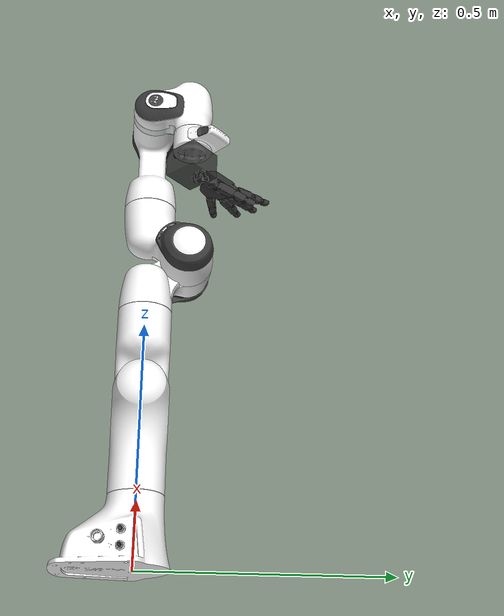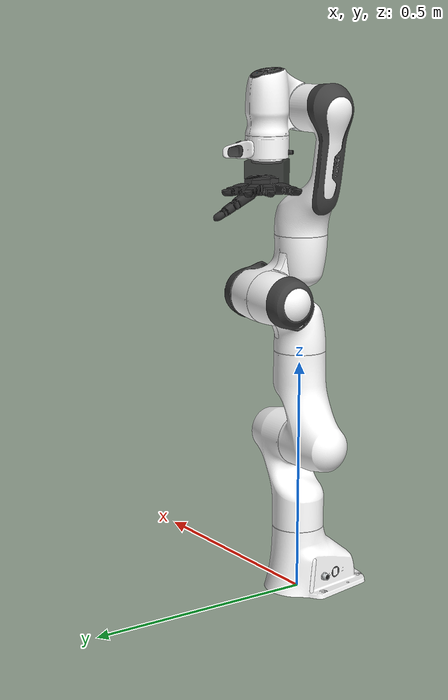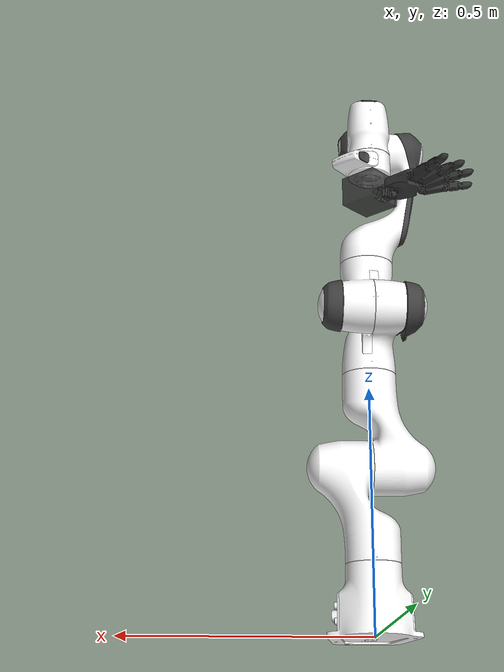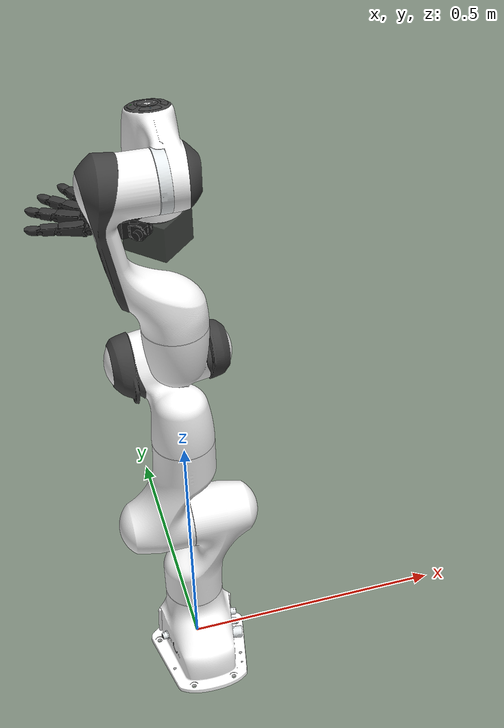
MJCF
<mujoco model="panda">
  <compiler angle="radian"/>

  <option impratio="10" cone="elliptic"/>

  <default>
    <default class="panda">
      <joint range="-2.8973 2.8973" armature="0.1" damping="1"/>
      <site size="0.001 0.005 0.005" group="4" rgba="0.5 0.5 0.5 0.3"/>
      <default class="panda/visual">
        <geom type="mesh" contype="0" conaffinity="0" group="2"/>
      </default>
      <default class="panda/collision">
        <geom type="mesh" group="3"/>
      </default>
    </default>
    <default class="plastic">
      <geom type="mesh" solref="0.005" solimp="0.5 0.99 0.0001" material="black"/>
    </default>
    <default class="jointconfig">
      <joint armature="0.0002" damping="0.01" frictionloss="0.01"/>
    </default>
    <default class="DIPCtrl">
      <joint range="0 1.22173"/>
      <general ctrlrange="0 1.22173" forcerange="-20 20" biastype="affine" gainprm="0.2" biasprm="0 -0.2 0.9"/>
    </default>
    <default class="PIPCtrl">
      <joint range="0 1.91986"/>
      <general ctrlrange="0 1.91986" forcerange="-20.063 20.063" biastype="affine" gainprm="0.2" biasprm="0 -0.2 0.9"/>
    </default>
    <default class="MCPCtrl">
      <joint range="-0.523599 1.5708"/>
      <general ctrlrange="-0.523599 1.5708" forcerange="-40.83 40.83" biastype="affine" gainprm="0.2" biasprm="0 -0.2 0.9"/>
    </default>
    <default class="MCP2Ctrl">
      <joint range="-0.610865 0.610865"/>
      <general ctrlrange="-0.610865 0.610865" forcerange="-20.45 20.45" biastype="affine" gainprm="0.2" biasprm="0 -0.2 0.9"/>
    </default>
  </default>

  <asset>
    <material name="white"/>
    <material name="off_white" rgba="0.901961 0.921569 0.929412 1"/>
    <material name="dark_grey" rgba="0.25 0.25 0.25 1"/>
    <material name="green" rgba="0 1 0 1"/>
    <material name="light_blue" rgba="0.039216 0.541176 0.780392 1"/>
    <material name="metal" rgba="0.58 0.58 0.58 1"/>
    <material name="silicone" rgba="0.1882 0.1882 0.1882 1"/>
    <material name="transparent_black" shininess="0.25" rgba="0.2 0.2 0.2 0.5"/>
    <material name="black" shininess="0.25" rgba="0.2 0.2 0.2 1"/>
    <material name="gray" specular="0" rgba="0.80848 0.80848 0.80848 1"/>
    <mesh name="link0_c" file="franka_emika_panda/assets/link0.stl"/>
    <mesh name="link1_c" file="franka_emika_panda/assets/link1.stl"/>
    <mesh name="link2_c" file="franka_emika_panda/assets/link2.stl"/>
    <mesh name="link3_c" file="franka_emika_panda/assets/link3.stl"/>
    <mesh name="link4_c" file="franka_emika_panda/assets/link4.stl"/>
    <mesh name="link5_c0" file="franka_emika_panda/assets/link5_collision_0.obj"/>
    <mesh name="link5_c1" file="franka_emika_panda/assets/link5_collision_1.obj"/>
    <mesh name="link5_c2" file="franka_emika_panda/assets/link5_collision_2.obj"/>
    <mesh name="link6_c" file="franka_emika_panda/assets/link6.stl"/>
    <mesh name="link7_c" file="franka_emika_panda/assets/link7.stl"/>
    <mesh name="link0_0" file="franka_emika_panda/assets/link0_0.obj"/>
    <mesh name="link0_1" file="franka_emika_panda/assets/link0_1.obj"/>
    <mesh name="link0_2" file="franka_emika_panda/assets/link0_2.obj"/>
    <mesh name="link0_3" file="franka_emika_panda/assets/link0_3.obj"/>
    <mesh name="link0_4" file="franka_emika_panda/assets/link0_4.obj"/>
    <mesh name="link0_5" file="franka_emika_panda/assets/link0_5.obj"/>
    <mesh name="link0_7" file="franka_emika_panda/assets/link0_7.obj"/>
    <mesh name="link0_8" file="franka_emika_panda/assets/link0_8.obj"/>
    <mesh name="link0_9" file="franka_emika_panda/assets/link0_9.obj"/>
    <mesh name="link0_10" file="franka_emika_panda/assets/link0_10.obj"/>
    <mesh name="link0_11" file="franka_emika_panda/assets/link0_11.obj"/>
    <mesh name="link1" file="franka_emika_panda/assets/link1.obj"/>
    <mesh name="link2" file="franka_emika_panda/assets/link2.obj"/>
    <mesh name="link3_0" file="franka_emika_panda/assets/link3_0.obj"/>
    <mesh name="link3_1" file="franka_emika_panda/assets/link3_1.obj"/>
    <mesh name="link3_2" file="franka_emika_panda/assets/link3_2.obj"/>
    <mesh name="link3_3" file="franka_emika_panda/assets/link3_3.obj"/>
    <mesh name="link4_0" file="franka_emika_panda/assets/link4_0.obj"/>
    <mesh name="link4_1" file="franka_emika_panda/assets/link4_1.obj"/>
    <mesh name="link4_2" file="franka_emika_panda/assets/link4_2.obj"/>
    <mesh name="link4_3" file="franka_emika_panda/assets/link4_3.obj"/>
    <mesh name="link5_0" file="franka_emika_panda/assets/link5_0.obj"/>
    <mesh name="link5_1" file="franka_emika_panda/assets/link5_1.obj"/>
    <mesh name="link5_2" file="franka_emika_panda/assets/link5_2.obj"/>
    <mesh name="link6_0" file="franka_emika_panda/assets/link6_0.obj"/>
    <mesh name="link6_1" file="franka_emika_panda/assets/link6_1.obj"/>
    <mesh name="link6_2" file="franka_emika_panda/assets/link6_2.obj"/>
    <mesh name="link6_3" file="franka_emika_panda/assets/link6_3.obj"/>
    <mesh name="link6_4" file="franka_emika_panda/assets/link6_4.obj"/>
    <mesh name="link6_5" file="franka_emika_panda/assets/link6_5.obj"/>
    <mesh name="link6_6" file="franka_emika_panda/assets/link6_6.obj"/>
    <mesh name="link6_7" file="franka_emika_panda/assets/link6_7.obj"/>
    <mesh name="link6_8" file="franka_emika_panda/assets/link6_8.obj"/>
    <mesh name="link6_9" file="franka_emika_panda/assets/link6_9.obj"/>
    <mesh name="link6_10" file="franka_emika_panda/assets/link6_10.obj"/>
    <mesh name="link6_11" file="franka_emika_panda/assets/link6_11.obj"/>
    <mesh name="link6_12" file="franka_emika_panda/assets/link6_12.obj"/>
    <mesh name="link6_13" file="franka_emika_panda/assets/link6_13.obj"/>
    <mesh name="link6_14" file="franka_emika_panda/assets/link6_14.obj"/>
    <mesh name="link6_15" file="franka_emika_panda/assets/link6_15.obj"/>
    <mesh name="link6_16" file="franka_emika_panda/assets/link6_16.obj"/>
    <mesh name="link7_0" file="franka_emika_panda/assets/link7_0.obj"/>
    <mesh name="link7_1" file="franka_emika_panda/assets/link7_1.obj"/>
    <mesh name="link7_2" file="franka_emika_panda/assets/link7_2.obj"/>
    <mesh name="link7_3" file="franka_emika_panda/assets/link7_3.obj"/>
    <mesh name="link7_4" file="franka_emika_panda/assets/link7_4.obj"/>
    <mesh name="link7_5" file="franka_emika_panda/assets/link7_5.obj"/>
    <mesh name="link7_6" file="franka_emika_panda/assets/link7_6.obj"/>
    <mesh name="link7_7" file="franka_emika_panda/assets/link7_7.obj"/>
    <mesh name="Wrist" file="dphand/meshes_obj/Wrist.obj" scale="0.001 0.001 0.001"/>
    <mesh name="Palm" file="dphand/meshes_obj/Palm.obj" scale="0.001 0.001 0.001"/>
    <mesh name="Thumb-MCP" file="dphand/meshes_obj/MCP.obj" scale="0.001 0.001 0.001"/>
    <mesh name="Thumb-PP" file="dphand/meshes_obj/PP.obj" scale="0.001 0.001 0.001"/>
    <mesh name="Thumb-PM" file="dphand/meshes_obj/PM.obj" scale="0.001 0.001 0.001"/>
    <mesh name="Thumb-PD" file="dphand/meshes_obj/PD.obj" scale="0.001 0.001 0.001"/>
    <mesh name="Index-PP" file="dphand/meshes_obj/PP.obj" scale="0.001 0.001 0.001"/>
    <mesh name="Index-PM" file="dphand/meshes_obj/PM.obj" scale="0.001 0.001 0.001"/>
    <mesh name="Index-PD" file="dphand/meshes_obj/PD.obj" scale="0.001 0.001 0.001"/>
    <mesh name="Middle-PD" file="dphand/meshes_obj/PD.obj" scale="0.001 0.001 0.001"/>
    <mesh name="Middle-PM" file="dphand/meshes_obj/PM.obj" scale="0.001 0.001 0.001"/>
    <mesh name="Middle-PP" file="dphand/meshes_obj/PP.obj" scale="0.001 0.001 0.001"/>
    <mesh name="Middle-MCP" file="dphand/meshes_obj/MCP.obj" scale="0.001 0.001 0.001"/>
    <mesh name="Ring-MCP" file="dphand/meshes_obj/MCP.obj" scale="0.001 0.001 0.001"/>
    <mesh name="Ring-PP" file="dphand/meshes_obj/PP.obj" scale="0.001 0.001 0.001"/>
    <mesh name="Ring-PM" file="dphand/meshes_obj/PM.obj" scale="0.001 0.001 0.001"/>
    <mesh name="Ring-PD" file="dphand/meshes_obj/PD.obj" scale="0.001 0.001 0.001"/>
    <mesh name="Little-PD" file="dphand/meshes_obj/PD.obj" scale="0.001 0.001 0.001"/>
    <mesh name="Little-PM" file="dphand/meshes_obj/PM.obj" scale="0.001 0.001 0.001"/>
    <mesh name="Little-PP" file="dphand/meshes_obj/PP.obj" scale="0.001 0.001 0.001"/>
    <mesh name="Little-MCP" file="dphand/meshes_obj/MCP.obj" scale="0.001 0.001 0.001"/>
    <mesh name="Index-MCP" file="dphand/meshes_obj/MCP.obj" scale="0.001 0.001 0.001"/>
    <mesh name="Forearm" file="dphand/meshes_obj/Forearm.obj" scale="0.001 0.001 0.001"/>
  </asset>

  <worldbody>
    <body name="link0" childclass="panda" quat="0.707105 0 0 0.707108">
      <inertial pos="0 0 0" quat="0.00630474 0.751245 0.00741774 0.659952" mass="0.629769" diaginertia="0.00430465 0.00387984 0.00313051"/>
      <geom class="panda/visual" material="off_white" mesh="link0_0"/>
      <geom class="panda/visual" material="dark_grey" mesh="link0_1"/>
      <geom class="panda/visual" material="off_white" mesh="link0_2"/>
      <geom class="panda/visual" material="dark_grey" mesh="link0_3"/>
      <geom class="panda/visual" material="off_white" mesh="link0_4"/>
      <geom class="panda/visual" material="dark_grey" mesh="link0_5"/>
      <geom class="panda/visual" material="white" mesh="link0_7"/>
      <geom class="panda/visual" material="white" mesh="link0_8"/>
      <geom class="panda/visual" material="dark_grey" mesh="link0_9"/>
      <geom class="panda/visual" material="off_white" mesh="link0_10"/>
      <geom class="panda/visual" material="white" mesh="link0_11"/>
      <geom class="panda/collision" mesh="link0_c"/>
      <body name="link1" pos="0 0 0.333">
        <inertial pos="0.003875 0.002081 -0.04762" quat="0.711549 0.00634377 -0.0131124 0.702485" mass="4.97068" diaginertia="0.707137 0.703435 0.00852456"/>
        <joint name="joint1" pos="0 0 0" axis="0 0 1"/>
        <geom class="panda/visual" material="white" mesh="link1"/>
        <geom class="panda/collision" mesh="link1_c"/>
        <site name="joint1" pos="0 0 0"/>
        <body name="link2" quat="0.707107 -0.707107 0 0">
          <inertial pos="-0.003141 -0.02872 0.003495" quat="-0.168175 0.828366 -0.122878 0.520027" mass="0.646926" diaginertia="0.0310326 0.0283001 0.00273425"/>
          <joint name="joint2" pos="0 0 0" axis="0 0 1" range="-1.7628 1.7628"/>
          <geom class="panda/visual" material="white" mesh="link2"/>
          <geom class="panda/collision" mesh="link2_c"/>
          <site name="joint2" pos="0 0 0"/>
          <body name="link3" pos="0 -0.316 0" quat="0.707107 0.707107 0 0">
            <inertial pos="0.027518 0.039252 -0.066502" quat="0.662769 -0.00678331 0.252053 0.705096" mass="3.2286" diaginertia="0.0415014 0.0414793 0.00124635"/>
            <joint name="joint3" pos="0 0 0" axis="0 0 1"/>
            <geom class="panda/visual" material="white" mesh="link3_0"/>
            <geom class="panda/visual" material="white" mesh="link3_1"/>
            <geom class="panda/visual" material="white" mesh="link3_2"/>
            <geom class="panda/visual" material="dark_grey" mesh="link3_3"/>
            <geom class="panda/collision" mesh="link3_c"/>
            <site name="joint3" pos="0 0 0"/>
            <body name="link4" pos="0.0825 0 0" quat="0.707107 0.707107 0 0">
              <inertial pos="-0.05317 0.104419 0.027454" quat="0.65058 0.529822 -0.0962034 0.535518" mass="3.5879" diaginertia="0.0349596 0.0281483 0.0106201"/>
              <joint name="joint4" pos="0 0 0" axis="0 0 1" range="-3.0718 -0.0698"/>
              <geom class="panda/visual" material="white" mesh="link4_0"/>
              <geom class="panda/visual" material="white" mesh="link4_1"/>
              <geom class="panda/visual" material="dark_grey" mesh="link4_2"/>
              <geom class="panda/visual" material="white" mesh="link4_3"/>
              <geom class="panda/collision" mesh="link4_c"/>
              <site name="joint4" pos="0 0 0"/>
              <body name="link5" pos="-0.0825 0.384 0" quat="0.707107 -0.707107 0 0">
                <inertial pos="-0.011953 0.041065 -0.038437" quat="0.987313 -0.0121954 0.0719187 -0.141037" mass="1.22595" diaginertia="0.0367625 0.0288531 0.00803437"/>
                <joint name="joint5" pos="0 0 0" axis="0 0 1"/>
                <geom class="panda/visual" material="dark_grey" mesh="link5_0"/>
                <geom class="panda/visual" material="white" mesh="link5_1"/>
                <geom class="panda/visual" material="white" mesh="link5_2"/>
                <geom class="panda/collision" mesh="link5_c0"/>
                <geom class="panda/collision" mesh="link5_c1"/>
                <geom class="panda/collision" mesh="link5_c2"/>
                <site name="joint5" pos="0 0 0"/>
                <body name="link6" quat="0.707107 0.707107 0 0">
                  <inertial pos="0.060149 -0.014117 -0.010517" quat="0.101075 0.59332 0.0287227 0.798079" mass="1.66656" diaginertia="0.00584276 0.00431037 0.00159787"/>
                  <joint name="joint6" pos="0 0 0" axis="0 0 1" range="-0.0175 3.7525"/>
                  <geom class="panda/visual" material="off_white" mesh="link6_0"/>
                  <geom class="panda/visual" material="white" mesh="link6_1"/>
                  <geom class="panda/visual" material="dark_grey" mesh="link6_2"/>
                  <geom class="panda/visual" material="white" mesh="link6_3"/>
                  <geom class="panda/visual" material="white" mesh="link6_4"/>
                  <geom class="panda/visual" material="white" mesh="link6_5"/>
                  <geom class="panda/visual" material="white" mesh="link6_6"/>
                  <geom class="panda/visual" material="light_blue" mesh="link6_7"/>
                  <geom class="panda/visual" material="light_blue" mesh="link6_8"/>
                  <geom class="panda/visual" material="dark_grey" mesh="link6_9"/>
                  <geom class="panda/visual" material="dark_grey" mesh="link6_10"/>
                  <geom class="panda/visual" material="white" mesh="link6_11"/>
                  <geom class="panda/visual" material="green" mesh="link6_12"/>
                  <geom class="panda/visual" material="white" mesh="link6_13"/>
                  <geom class="panda/visual" material="dark_grey" mesh="link6_14"/>
                  <geom class="panda/visual" material="dark_grey" mesh="link6_15"/>
                  <geom class="panda/visual" material="white" mesh="link6_16"/>
                  <geom class="panda/collision" mesh="link6_c"/>
                  <site name="joint6" pos="0 0 0"/>
                  <body name="link7" pos="0.088 0 0" quat="0.707107 0.707107 0 0">
                    <inertial pos="0.010517 -0.004252 0.061597" quat="0.992939 -0.0762041 0.0733595 -0.0537067" mass="0.735522" diaginertia="0.0127345 0.0101055 0.00451803"/>
                    <joint name="joint7" pos="0 0 0" axis="0 0 1"/>
                    <geom class="panda/visual" material="white" mesh="link7_0"/>
                    <geom class="panda/visual" material="dark_grey" mesh="link7_1"/>
                    <geom class="panda/visual" material="dark_grey" mesh="link7_2"/>
                    <geom class="panda/visual" material="dark_grey" mesh="link7_3"/>
                    <geom class="panda/visual" material="dark_grey" mesh="link7_4"/>
                    <geom class="panda/visual" material="dark_grey" mesh="link7_5"/>
                    <geom class="panda/visual" material="dark_grey" mesh="link7_6"/>
                    <geom class="panda/visual" material="white" mesh="link7_7"/>
                    <geom class="panda/collision" mesh="link7_c"/>
                    <site name="joint7" pos="0 0 0"/>
                    <body name="attachment" quat="0.382683 0 0 0.92388">
                      <geom size="0.01 0.01 0.01" type="box" rgba="1 0 0 0.5"/>
                      <site name="pinch" pos="0 0 0.147" quat="9.38184e-07 -0.707108 0.707105 -9.38187e-07"/>
                      <body name="Forearm" pos="0.107 0 0.147" quat="9.38184e-07 0.707105 -0.707108 9.38187e-07">
                        <inertial pos="-2.66154e-08 0.00901929 0.00320886" quat="0.502883 0.4971 -0.4971 0.502883" mass="1.94533" diaginertia="0.00960428 0.00906669 0.00209354"/>
                        <body name="Wrist" pos="0 0.13655 0" quat="0 0 -1 0">
                          <inertial pos="-1.69244e-07 0.00164725 -1.68006e-06" quat="0.501832 0.498155 0.49879 0.501213" mass="0.0265621" diaginertia="4.35913e-06 3.93694e-06 2.08125e-06"/>
                          <joint name="Forearm_Wrist-Flexion" class="jointconfig" pos="0.02 1.72024e-07 1.75115e-07" axis="1 0 0" range="-1.0472 1.0472" damping="2"/>
                          <geom size="0.04 0.04 0.03" pos="0 -0.03 -0.015" type="box" rgba="0.2 0.2 0.2 0.8"/>
                          <geom name="Wrist_geom" class="plastic" mesh="Wrist"/>
                          <camera name="wrist" pos="0 -0.05 0.06" quat="0.707105 0.707108 0 0" fovy="90"/>
                          <body name="Palm" pos="0.011291 0.0797134 0.0435865" quat="-2.82252e-06 0 1 0">
                            <inertial pos="0.00836675 -0.0219616 0.0507502" quat="0.468182 0.517884 -0.509503 0.502999" mass="0.260211" diaginertia="0.000208599 0.000168215 9.33263e-05"/>
                            <joint name="Wrist_Wrist-Abduction" class="jointconfig" pos="0.0112908 -0.0647132 0.0331363" axis="5.64503e-06 0 -1" range="-0.872665 0.523599" damping="0.1"/>
                            <geom name="Palm_geom" class="plastic" mesh="Palm"/>
                            <body name="Thumb-MCP" pos="0.0664645 -0.00613254 0.232169" quat="0.806444 0.162552 -0.473519 0.314651">
                              <inertial pos="-0.2 0.00771726 -0.0523825" quat="0.650782 0.276556 0.650782 0.276556" mass="0.00503699" diaginertia="1.74126e-07 1.44952e-07 1.29709e-07"/>
                              <joint name="Palm_Thumb-MCP-Flexion" class="jointconfig" pos="-0.191 0.00850011 -0.0532815" axis="1 -1.97734e-08 2.75775e-07" range="-0.523599 1.5708"/>
                              <geom name="Thumb-MCP_geom" class="plastic" mesh="Thumb-MCP"/>
                              <body name="Thumb-PP" pos="-0.19991 -8.97579e-05 -0.0918666" quat="0 0 0.707107 -0.707107">
                                <inertial pos="9.0303e-05 -0.0145312 -0.00588035" quat="0.633625 0.773641 0.000109551 -0.000126635" mass="0.0370886" diaginertia="5.75364e-06 5.59144e-06 2.26505e-06"/>
                                <joint name="Thumb-MCP_Thumb-MCP-Abduction" class="jointconfig" pos="9.00147e-05 -0.0368352 -0.0116207" axis="1.26824e-07 -0.5 0.866025" range="-0.610865 0.610865"/>
                                <geom name="Thumb-PP_geom" class="plastic" mesh="Thumb-PP"/>
                                <body name="Thumb-PM" pos="9.00863e-05 0.000633369 -8.9757e-05" quat="0 0 0.707107 -0.707107">
                                  <inertial pos="-1.84858e-07 0.00519583 -0.0187189" quat="0.70525 -0.0497224 0.0497361 0.705461" mass="0.0202272" diaginertia="2.02542e-06 1.99671e-06 7.90129e-07"/>
                                  <joint name="Thumb-PP_Thumb-PIP-Flexion" class="jointconfig" pos="0.00900005 0.00750001 -0.00749996" axis="1 -1.97734e-08 2.75775e-07" range="0 1.91986"/>
                                  <geom name="Thumb-PM_geom" class="plastic" mesh="Thumb-PM"/>
                                  <body name="Thumb-PD" pos="0 0.006 -0.030374" quat="1 0 0 0">
                                    <inertial pos="4.78256e-06 -0.00105952 -0.0142351" quat="0.705652 -0.0445682 0.045259 0.705706" mass="0.00822123" diaginertia="6.22404e-07 5.89825e-07 2.2354e-07"/>
                                    <joint name="Thumb-PM_Thumb-DIP-Flexion" class="jointconfig" pos="0.00750019 -1.01357e-08 -0.00599965" axis="1 -1.97734e-08 2.75775e-07" range="0 1.22173"/>
                                    <geom name="Thumb-PD_geom" class="plastic" mesh="Thumb-PD"/>
                                  </body>
                                </body>
                              </body>
                            </body>
                            <body name="Index-MCP" pos="-0.176119 0.0186063 0.0520866" quat="-0.092295 0.0922969 0.70105 -0.701065">
                              <inertial pos="-0.2 0.00771726 -0.0523825" quat="0.650782 0.276556 0.650782 0.276556" mass="0.00503699" diaginertia="1.74126e-07 1.44952e-07 1.29709e-07"/>
                              <joint name="Palm_Index-MCP-Flexion" class="jointconfig" pos="-0.191 0.00850018 -0.0532817" axis="1 1.93024e-12 8.85254e-08" range="-0.523599 1.5708"/>
                              <geom name="Index-MCP_geom" class="plastic" mesh="Index-MCP"/>
                              <body name="Index-PP" pos="-0.19991 -8.97579e-05 -0.0918666" quat="0 0 0.707107 -0.707107">
                                <inertial pos="9.0303e-05 -0.0145312 -0.00588035" quat="0.633625 0.773641 0.000109551 -0.000126635" mass="0.0370886" diaginertia="5.75364e-06 5.59144e-06 2.26505e-06"/>
                                <joint name="Index-MCP_Index-MCP-Abduction" class="jointconfig" pos="8.99993e-05 -0.036835 -0.0116209" axis="-2.67814e-07 -0.500001 0.866025" range="-0.610865 0.610865"/>
                                <geom name="Index-PP_geom" class="plastic" mesh="Index-PP"/>
                                <body name="Index-PM" pos="9.00863e-05 0.000633369 -8.9757e-05" quat="0 0 0.707107 -0.707107">
                                  <inertial pos="-1.84858e-07 0.00519583 -0.0187189" quat="0.70525 -0.0497224 0.0497361 0.705461" mass="0.0202272" diaginertia="2.02542e-06 1.99671e-06 7.90129e-07"/>
                                  <joint name="Index-PP_Index-PIP-Flexion" class="jointconfig" pos="0.00900029 0.00750016 -0.00749941" axis="1 1.94022e-12 8.85254e-08" range="0 1.91986"/>
                                  <geom name="Index-PM_geom" class="plastic" mesh="Index-PM"/>
                                  <body name="Index-PD" pos="0 0.006 -0.030374" quat="1 0 0 0">
                                    <inertial pos="4.78256e-06 -0.00105952 -0.0142351" quat="0.705652 -0.0445682 0.045259 0.705706" mass="0.00822123" diaginertia="6.22404e-07 5.89825e-07 2.2354e-07"/>
                                    <joint name="Index-PM_Index-DIP-Flexion" class="jointconfig" pos="0.00750034 -4.76857e-07 -0.00599944" axis="1 1.94016e-12 8.85254e-08" range="0 1.22173"/>
                                    <geom name="Index-PD_geom" class="plastic" mesh="Index-PD"/>
                                  </body>
                                </body>
                              </body>
                            </body>
                            <body name="Middle-MCP" pos="-0.188709 -0.0297305 0.0520854" quat="1.99582e-06 1.99582e-06 0.707107 -0.707107">
                              <inertial pos="-0.2 0.00771726 -0.0523825" quat="0.650782 0.276556 0.650782 0.276556" mass="0.00503699" diaginertia="1.74126e-07 1.44952e-07 1.29709e-07"/>
                              <joint name="Palm_Middle-MCP-Flexion" class="jointconfig" pos="-0.191 0.00850018 -0.0532823" axis="1 0 0" range="-0.523599 1.5708"/>
                              <geom name="Middle-MCP_geom" class="plastic" mesh="Middle-MCP"/>
                              <body name="Middle-PP" pos="-0.19991 -8.97579e-05 -0.0918666" quat="0 0 -0.707107 0.707107">
                                <inertial pos="9.0303e-05 -0.0145312 -0.00588035" quat="0.633625 0.773641 0.000109551 -0.000126635" mass="0.0370886" diaginertia="5.75364e-06 5.59144e-06 2.26505e-06"/>
                                <joint name="Middle-MCP_Middle-MCP-Abduction" class="jointconfig" pos="9.00624e-05 -0.0368344 -0.0116209" axis="0 -0.5 0.866025" range="-0.610865 0.610865"/>
                                <geom name="Middle-PP_geom" class="plastic" mesh="Middle-PP"/>
                                <body name="Middle-PM" pos="9.00863e-05 0.000633369 -8.9757e-05" quat="0 0 -0.707107 0.707107">
                                  <inertial pos="-1.84858e-07 0.00519583 -0.0187189" quat="0.70525 -0.0497224 0.0497361 0.705461" mass="0.0202272" diaginertia="2.02542e-06 1.99671e-06 7.90129e-07"/>
                                  <joint name="Middle-PP_Middle-PIP-Flexion" class="jointconfig" pos="0.00900002 0.00750018 -0.00750027" axis="1 0 0" range="0 1.91986"/>
                                  <geom name="Middle-PM_geom" class="plastic" mesh="Middle-PM"/>
                                  <body name="Middle-PD" pos="0 0.006 -0.030374" quat="1 0 0 0">
                                    <inertial pos="4.78256e-06 -0.00105952 -0.0142351" quat="0.705652 -0.0445682 0.045259 0.705706" mass="0.00822123" diaginertia="6.22404e-07 5.89825e-07 2.2354e-07"/>
                                    <joint name="Middle-PM_Middle-DIP-Flexion" class="jointconfig" pos="0.00750002 1.71977e-07 -0.00600026" axis="1 0 0" range="0 1.22173"/>
                                    <geom name="Middle-PD_geom" class="plastic" mesh="Middle-PD"/>
                                  </body>
                                </body>
                              </body>
                            </body>
                            <body name="Ring-MCP" pos="-0.18767 -0.0849217 0.0520842" quat="0.0922969 -0.092295 0.701065 -0.70105">
                              <inertial pos="-0.2 0.00771726 -0.0523825" quat="0.650782 0.276556 0.650782 0.276556" mass="0.00503699" diaginertia="1.74126e-07 1.44952e-07 1.29709e-07"/>
                              <joint name="Palm_Ring-MCP-Flexion" class="jointconfig" pos="-0.191 0.00850018 -0.0532813" axis="1 1.93041e-12 -8.85254e-08" range="-0.523599 1.5708"/>
                              <geom name="Ring-MCP_geom" class="plastic" mesh="Ring-MCP"/>
                              <body name="Ring-PP" pos="-0.19991 -8.97579e-05 -0.0918666" quat="0 0 -0.707107 0.707107">
                                <inertial pos="9.0303e-05 -0.0145312 -0.00588035" quat="0.633625 0.773641 0.000109551 -0.000126635" mass="0.0370886" diaginertia="5.75364e-06 5.59144e-06 2.26505e-06"/>
                                <joint name="Ring-MCP_Ring-MCP-Abduction" class="jointconfig" pos="9.01272e-05 -0.0368351 -0.011621" axis="-3.56339e-07 -0.5 0.866025" range="-0.610865 0.610865"/>
                                <geom name="Ring-PP_geom" class="plastic" mesh="Ring-PP"/>
                                <body name="Ring-PM" pos="9.00863e-05 0.000633369 -8.9757e-05" quat="0 0 -0.707107 0.707107">
                                  <inertial pos="-1.84858e-07 0.00519583 -0.0187189" quat="0.70525 -0.0497224 0.0497361 0.705461" mass="0.0202272" diaginertia="2.02542e-06 1.99671e-06 7.90129e-07"/>
                                  <joint name="Ring-PP_Ring-PIP-Flexion" class="jointconfig" pos="0.00899989 0.00750019 -0.00750027" axis="1 1.92196e-12 -8.85254e-08" range="0 1.91986"/>
                                  <geom name="Ring-PM_geom" class="plastic" mesh="Ring-PM"/>
                                  <body name="Ring-PD" pos="0 0.006 -0.030374" quat="1 0 0 0">
                                    <inertial pos="4.78256e-06 -0.00105952 -0.0142351" quat="0.705652 -0.0445682 0.045259 0.705706" mass="0.00822123" diaginertia="6.22404e-07 5.89825e-07 2.2354e-07"/>
                                    <joint name="Ring-PM_Ring-DIP-Flexion" class="jointconfig" pos="0.00749974 -1.79431e-07 -0.00599987" axis="1 1.92208e-12 -8.85254e-08" range="0 1.22173"/>
                                    <geom name="Ring-PD_geom" class="plastic" mesh="Ring-PD"/>
                                  </body>
                                </body>
                              </body>
                            </body>
                            <body name="Little-MCP" pos="-0.158751 -0.160558 0.052085" quat="-0.212632 0.21263 -0.674382 0.674377">
                              <inertial pos="-0.2 0.00771726 -0.0523825" quat="0.650782 0.276556 0.650782 0.276556" mass="0.00503699" diaginertia="1.74126e-07 1.44952e-07 1.29709e-07"/>
                              <joint name="Palm_Little-MCP-Flexion" class="jointconfig" pos="-0.191 0.00850018 -0.0532819" axis="1 3.26784e-12 -3.32035e-07" range="-0.523599 1.5708"/>
                              <geom name="Little-MCP_geom" class="plastic" mesh="Little-MCP"/>
                              <body name="Little-PP" pos="-0.19991 -8.97579e-05 -0.0918666" quat="0 0 -0.707107 0.707107">
                                <inertial pos="9.0303e-05 -0.0145312 -0.00588035" quat="0.633625 0.773641 0.000109551 -0.000126635" mass="0.0370886" diaginertia="5.75364e-06 5.59144e-06 2.26505e-06"/>
                                <joint name="Little-MCP_Little-MCP-Abduction" class="jointconfig" pos="9.03265e-05 -0.0368347 -0.011621" axis="-8.52922e-08 -0.5 0.866025" range="-0.610865 0.610865"/>
                                <geom name="Little-PP_geom" class="plastic" mesh="Little-PP"/>
                                <body name="Little-PM" pos="9.00863e-05 0.000633369 -8.9757e-05" quat="0 0 -0.707107 0.707107">
                                  <inertial pos="-1.84858e-07 0.00519583 -0.0187189" quat="0.70525 -0.0497224 0.0497361 0.705461" mass="0.0202272" diaginertia="2.02542e-06 1.99671e-06 7.90129e-07"/>
                                  <joint name="Little-PP_Little-PIP-Flexion" class="jointconfig" pos="0.00900005 0.00749963 -0.00749963" axis="1 3.23206e-12 -3.32035e-07" range="0 1.91986"/>
                                  <geom name="Little-PM_geom" class="plastic" mesh="Little-PM"/>
                                  <body name="Little-PD" pos="0 0.006 -0.030374" quat="1 0 0 0">
                                    <inertial pos="4.78256e-06 -0.00105952 -0.0142351" quat="0.705652 -0.0445682 0.045259 0.705706" mass="0.00822123" diaginertia="6.22404e-07 5.89825e-07 2.2354e-07"/>
                                    <joint name="Little-PM_Little-DIP-Flexion" class="jointconfig" pos="0.00750003 -8.41823e-08 -0.00600015" axis="1 3.23144e-12 -3.32035e-07" range="0 1.22173"/>
                                    <geom name="Little-PD_geom" class="plastic" mesh="Little-PD"/>
                                  </body>
                                </body>
                              </body>
                            </body>
                          </body>
                        </body>
                      </body>
                    </body>
                  </body>
                </body>
              </body>
            </body>
          </body>
        </body>
      </body>
    </body>
  </worldbody>

  <contact>
    <exclude name="Wrist_Forearm-exclude" body1="Forearm" body2="Wrist"/>
    <exclude name="Palm_Forearm-exclude" body1="Forearm" body2="Palm"/>
    <exclude name="Thumb-PP-exclude" body1="Palm" body2="Thumb-PP"/>
    <exclude name="Index-PP-exclude" body1="Palm" body2="Index-PP"/>
    <exclude name="Middle-PP-exclude" body1="Palm" body2="Middle-PP"/>
    <exclude name="Ring-PP-exclude" body1="Palm" body2="Ring-PP"/>
    <exclude name="Little-PP-exclude" body1="Palm" body2="Little-PP"/>
  </contact>

  <actuator>
    <general name="actuator1" class="panda" joint="joint1" ctrlrange="-87 87"/>
    <general name="actuator2" class="panda" joint="joint2" ctrlrange="-87 87"/>
    <general name="actuator3" class="panda" joint="joint3" ctrlrange="-87 87"/>
    <general name="actuator4" class="panda" joint="joint4" ctrlrange="-87 87"/>
    <general name="actuator5" class="panda" joint="joint5" ctrlrange="-12 12"/>
    <general name="actuator6" class="panda" joint="joint6" ctrlrange="-12 12"/>
    <general name="actuator7" class="panda" joint="joint7" ctrlrange="-12 12"/>
    <general name="Wrist" joint="Forearm_Wrist-Flexion" ctrlrange="-1.0472 1.0472" forcerange="-500 500" biastype="affine" gainprm="50" biasprm="0 -50"/>
    <general name="Palm" joint="Wrist_Wrist-Abduction" ctrlrange="-0.523599 0.523599" forcerange="-500 500" biastype="affine" gainprm="50" biasprm="0 -50"/>
    <general name="Thumb-MCP" class="MCPCtrl" joint="Palm_Thumb-MCP-Flexion" biasprm="0 -0.2 -0.0151927"/>
    <general name="Thumb-PP" class="MCP2Ctrl" joint="Thumb-MCP_Thumb-MCP-Abduction" biasprm="0 -0.2 -0.0145284"/>
    <general name="Thumb-PM" class="PIPCtrl" joint="Thumb-PP_Thumb-PIP-Flexion" biasprm="0 -0.2 -0.0118476"/>
    <general name="Thumb-PD" class="DIPCtrl" joint="Thumb-PM_Thumb-DIP-Flexion" biasprm="0 -0.2 -0.0114171"/>
    <general name="Index-MCP" class="MCPCtrl" joint="Palm_Index-MCP-Flexion" biasprm="0 -0.2 -0.0151927"/>
    <general name="Index-PP" class="MCP2Ctrl" joint="Index-MCP_Index-MCP-Abduction" biasprm="0 -0.2 -0.0145284"/>
    <general name="Index-PM" class="PIPCtrl" joint="Index-PP_Index-PIP-Flexion" biasprm="0 -0.2 -0.0118477"/>
    <general name="Index-PD" class="DIPCtrl" joint="Index-PM_Index-DIP-Flexion" biasprm="0 -0.2 -0.0114171"/>
    <general name="Middle-MCP" class="MCPCtrl" joint="Palm_Middle-MCP-Flexion" biasprm="0 -0.2 -0.0151926"/>
    <general name="Middle-PP" class="MCP2Ctrl" joint="Middle-MCP_Middle-MCP-Abduction" biasprm="0 -0.2 -0.0145284"/>
    <general name="Middle-PM" class="PIPCtrl" joint="Middle-PP_Middle-PIP-Flexion" biasprm="0 -0.2 -0.0118476"/>
    <general name="Middle-PD" class="DIPCtrl" joint="Middle-PM_Middle-DIP-Flexion" biasprm="0 -0.2 -0.0114171"/>
    <general name="Ring-MCP" class="MCPCtrl" joint="Palm_Ring-MCP-Flexion" biasprm="0 -0.2 -0.0151928"/>
    <general name="Ring-PP" class="MCP2Ctrl" joint="Ring-MCP_Ring-MCP-Abduction" biasprm="0 -0.2 -0.0145284"/>
    <general name="Ring-PM" class="PIPCtrl" joint="Ring-PP_Ring-PIP-Flexion" biasprm="0 -0.2 -0.0118476"/>
    <general name="Ring-PD" class="DIPCtrl" joint="Ring-PM_Ring-DIP-Flexion" biasprm="0 -0.2 -0.0114171"/>
    <general name="Little-MCP" class="MCPCtrl" joint="Palm_Little-MCP-Flexion" biasprm="0 -0.2 -0.0151927"/>
    <general name="Little-PP" class="MCP2Ctrl" joint="Little-MCP_Little-MCP-Abduction" biasprm="0 -0.2 -0.0145284"/>
    <general name="Little-PM" class="PIPCtrl" joint="Little-PP_Little-PIP-Flexion" biasprm="0 -0.2 -0.0118476"/>
    <general name="Little-PD" class="DIPCtrl" joint="Little-PM_Little-DIP-Flexion" biasprm="0 -0.2 -0.0114171"/>
  </actuator>

  <sensor>
    <framepos objtype="site" objname="pinch" name="tcp_pos"/>
    <framequat objtype="site" objname="pinch" name="tcp_quat"/>
    <framelinvel objtype="site" objname="pinch" name="tcp_linvel"/>
    <frameangvel objtype="site" objname="pinch" name="tcp_angvel"/>
  </sensor>
</mujoco>
